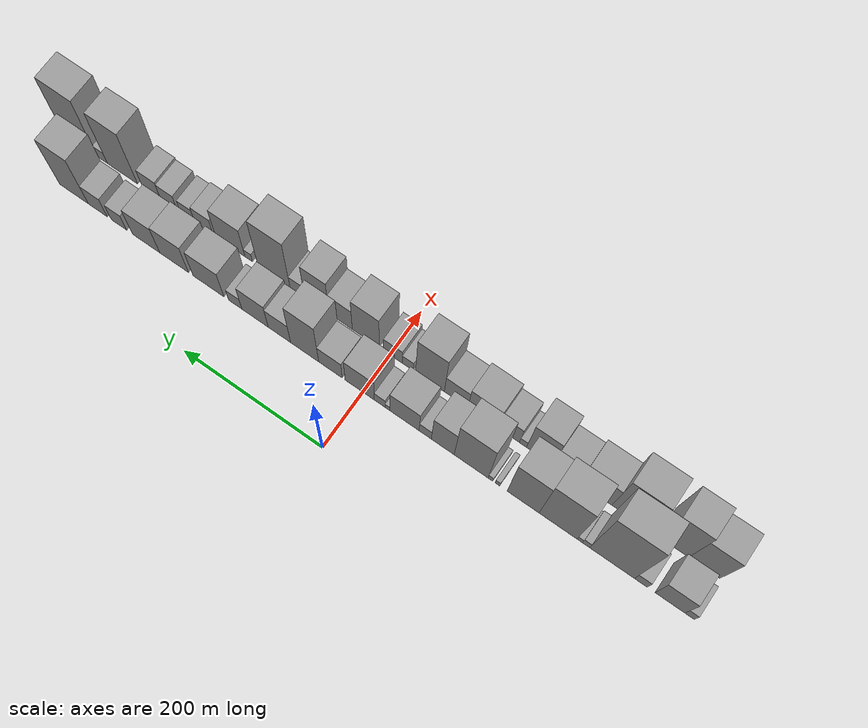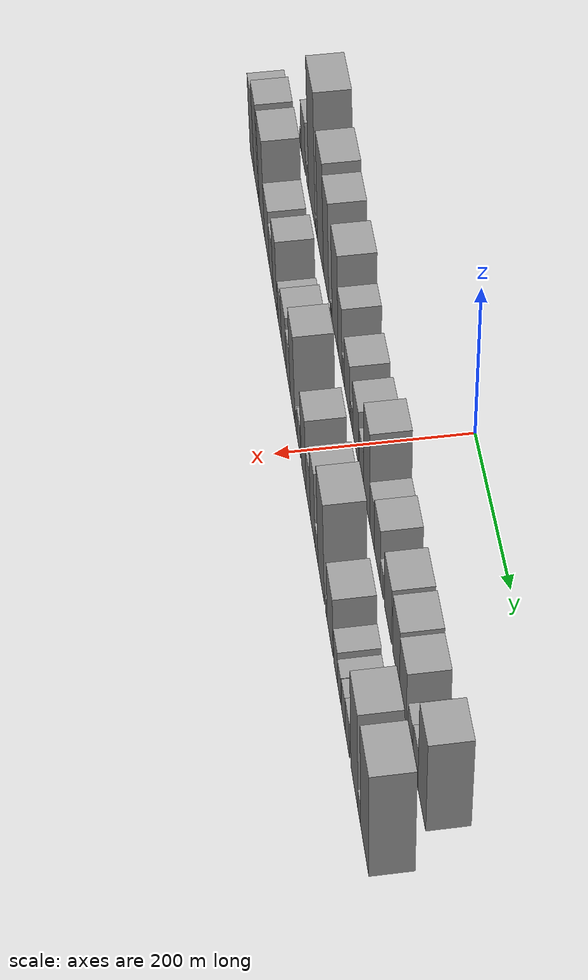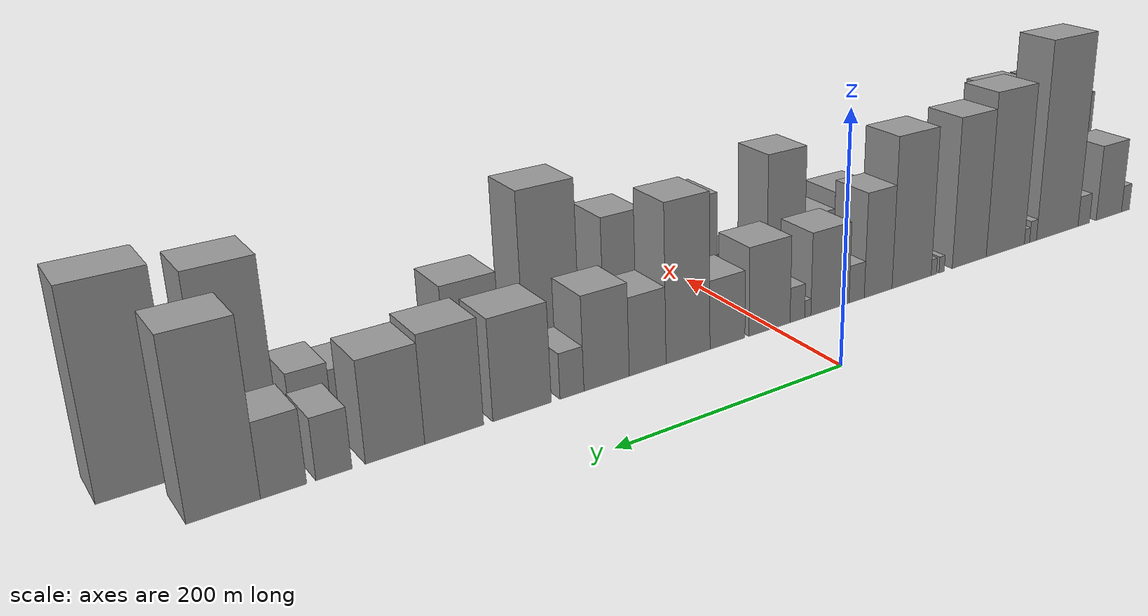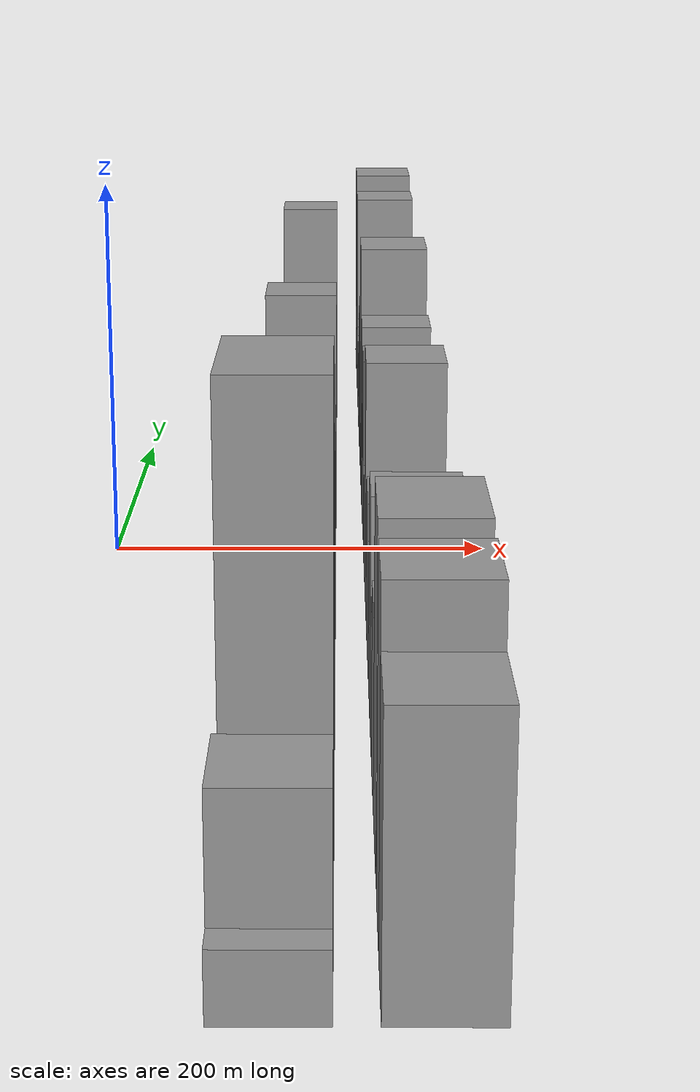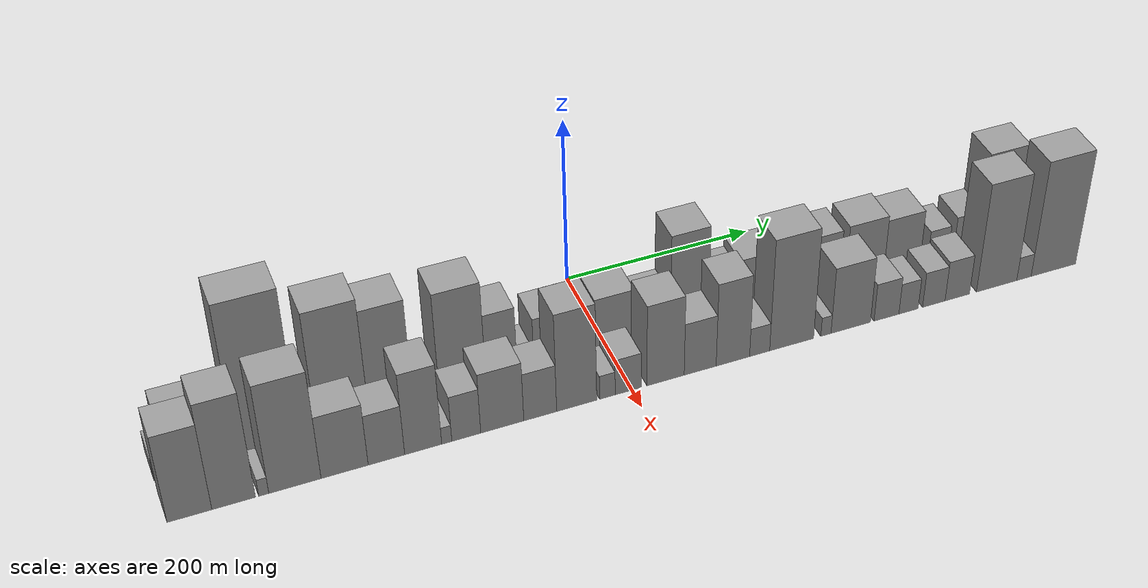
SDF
<sdf version="1.6">
 <world name="default">
  <scene>
   <sky><clouds><speed>12</speed></clouds></sky>
   <ambient>0.4 0.4 0.4 1</ambient>
   <background>0.7 0.7 0.7 1</background>
   <shadows>1</shadows>
  </scene>
  <gravity>0 0 -9.8066</gravity>
  <magnetic_field>6e-06 2.3e-05 -4.2e-05</magnetic_field>
  <physics default="0" name="default_physics" type="ode">
   <ode>
    <solver>
     <type>quick</type>
     <iters>10</iters>
     <sor>1.0</sor>
     <use_dynamic_moi_rescaling>0</use_dynamic_moi_rescaling>
    </solver>
    <constraints>
     <cfm>0</cfm>
     <erp>0.2</erp>
     <contact_max_correcting_vel>100</contact_max_correcting_vel>
     <contact_surface_layer>0.001</contact_surface_layer>
    </constraints>
   </ode>
   <max_step_size>0.004</max_step_size>
   <real_time_factor>1</real_time_factor>
   <real_time_update_rate>250</real_time_update_rate>
  </physics>
  <light name="sun" type="directional">
   <pose>0 0 10 0 0 0</pose>
   <diffuse>0.8 0.8 0.8 1</diffuse>
   <specular>0.2 0.2 0.2 1</specular>
   <attenuation>
    <range>1000</range>
    <constant>0.9</constant>
    <linear>0.01</linear>
    <quadratic>0.001</quadratic>
   </attenuation>
   <direction>-0.5 0.1 -0.9</direction>
  </light>
  <model name="building_1">
   <static>1</static>
   <pose>100.0000 -443.9033 0 0.000000 0.000000 0.000000</pose>
   <link name="link">
    <pose>0 0 13.50 0 0 0</pose>
    <collision name="collision"><geometry><box><size>40.0000 12.1934 27.0000</size></box></geometry></collision>
    <visual name="visual">
     <cast_shadows>0</cast_shadows>
     <geometry><box><size>40.0000 12.1934 27.0000</size></box></geometry>
     <material>
      <script>
       <uri>model://grey_wall/materials/scripts</uri>
       <uri>model://grey_wall/materials/textures</uri>
       <name>vrc/grey_wall</name>
      </script>
     </material>
    </visual>
   </link>
  </model>
  <model name="building_2">
   <static>1</static>
   <pose>100.0000 -418.4260 0 0.000000 0.000000 0.000000</pose>
   <link name="link">
    <pose>0 0 37.50 0 0 0</pose>
    <collision name="collision"><geometry><box><size>40.0000 38.7613 75.0000</size></box></geometry></collision>
    <visual name="visual">
     <cast_shadows>0</cast_shadows>
     <geometry><box><size>40.0000 38.7613 75.0000</size></box></geometry>
     <material>
      <script>
       <uri>model://grey_wall/materials/scripts</uri>
       <uri>model://grey_wall/materials/textures</uri>
       <name>vrc/grey_wall</name>
      </script>
     </material>
    </visual>
   </link>
  </model>
  <model name="building_3">
   <static>1</static>
   <pose>100.0000 -380.5688 0 0.000000 0.000000 0.000000</pose>
   <link name="link">
    <pose>0 0 15.00 0 0 0</pose>
    <collision name="collision"><geometry><box><size>40.0000 16.9530 30.0000</size></box></geometry></collision>
    <visual name="visual">
     <cast_shadows>0</cast_shadows>
     <geometry><box><size>40.0000 16.9530 30.0000</size></box></geometry>
     <material>
      <script>
       <uri>model://grey_wall/materials/scripts</uri>
       <uri>model://grey_wall/materials/textures</uri>
       <name>vrc/grey_wall</name>
      </script>
     </material>
    </visual>
   </link>
  </model>
  <model name="building_4">
   <static>1</static>
   <pose>100.0000 -342.3621 0 0.000000 0.000000 0.000000</pose>
   <link name="link">
    <pose>0 0 94.50 0 0 0</pose>
    <collision name="collision"><geometry><box><size>40.0000 59.4605 189.0000</size></box></geometry></collision>
    <visual name="visual">
     <cast_shadows>0</cast_shadows>
     <geometry><box><size>40.0000 59.4605 189.0000</size></box></geometry>
     <material>
      <script>
       <uri>model://grey_wall/materials/scripts</uri>
       <uri>model://grey_wall/materials/textures</uri>
       <name>vrc/grey_wall</name>
      </script>
     </material>
    </visual>
   </link>
  </model>
  <model name="building_5">
   <static>1</static>
   <pose>100.0000 -307.8741 0 0.000000 0.000000 0.000000</pose>
   <link name="link">
    <pose>0 0 10.50 0 0 0</pose>
    <collision name="collision"><geometry><box><size>40.0000 9.5156 21.0000</size></box></geometry></collision>
    <visual name="visual">
     <cast_shadows>0</cast_shadows>
     <geometry><box><size>40.0000 9.5156 21.0000</size></box></geometry>
     <material>
      <script>
       <uri>model://grey_wall/materials/scripts</uri>
       <uri>model://grey_wall/materials/textures</uri>
       <name>vrc/grey_wall</name>
      </script>
     </material>
    </visual>
   </link>
  </model>
  <model name="building_6">
   <static>1</static>
   <pose>100.0000 -299.5554 0 0.000000 0.000000 0.000000</pose>
   <link name="link">
    <pose>0 0 7.50 0 0 0</pose>
    <collision name="collision"><geometry><box><size>40.0000 7.1216 15.0000</size></box></geometry></collision>
    <visual name="visual">
     <cast_shadows>0</cast_shadows>
     <geometry><box><size>40.0000 7.1216 15.0000</size></box></geometry>
     <material>
      <script>
       <uri>model://grey_wall/materials/scripts</uri>
       <uri>model://grey_wall/materials/textures</uri>
       <name>vrc/grey_wall</name>
      </script>
     </material>
    </visual>
   </link>
  </model>
  <model name="building_7">
   <static>1</static>
   <pose>100.0000 -270.4288 0 0.000000 0.000000 0.000000</pose>
   <link name="link">
    <pose>0 0 76.50 0 0 0</pose>
    <collision name="collision"><geometry><box><size>40.0000 51.1316 153.0000</size></box></geometry></collision>
    <visual name="visual">
     <cast_shadows>0</cast_shadows>
     <geometry><box><size>40.0000 51.1316 153.0000</size></box></geometry>
     <material>
      <script>
       <uri>model://grey_wall/materials/scripts</uri>
       <uri>model://grey_wall/materials/textures</uri>
       <name>vrc/grey_wall</name>
      </script>
     </material>
    </visual>
   </link>
  </model>
  <model name="building_8">
   <static>1</static>
   <pose>100.0000 -223.1393 0 0.000000 0.000000 0.000000</pose>
   <link name="link">
    <pose>0 0 69.00 0 0 0</pose>
    <collision name="collision"><geometry><box><size>40.0000 43.4473 138.0000</size></box></geometry></collision>
    <visual name="visual">
     <cast_shadows>0</cast_shadows>
     <geometry><box><size>40.0000 43.4473 138.0000</size></box></geometry>
     <material>
      <script>
       <uri>model://grey_wall/materials/scripts</uri>
       <uri>model://grey_wall/materials/textures</uri>
       <name>vrc/grey_wall</name>
      </script>
     </material>
    </visual>
   </link>
  </model>
  <model name="building_9">
   <static>1</static>
   <pose>100.0000 -188.1694 0 0.000000 0.000000 0.000000</pose>
   <link name="link">
    <pose>0 0 7.50 0 0 0</pose>
    <collision name="collision"><geometry><box><size>40.0000 6.4925 15.0000</size></box></geometry></collision>
    <visual name="visual">
     <cast_shadows>0</cast_shadows>
     <geometry><box><size>40.0000 6.4925 15.0000</size></box></geometry>
     <material>
      <script>
       <uri>model://grey_wall/materials/scripts</uri>
       <uri>model://grey_wall/materials/textures</uri>
       <name>vrc/grey_wall</name>
      </script>
     </material>
    </visual>
   </link>
  </model>
  <model name="building_10">
   <static>1</static>
   <pose>100.0000 -178.6271 0 0.000000 0.000000 0.000000</pose>
   <link name="link">
    <pose>0 0 7.50 0 0 0</pose>
    <collision name="collision"><geometry><box><size>40.0000 6.5922 15.0000</size></box></geometry></collision>
    <visual name="visual">
     <cast_shadows>0</cast_shadows>
     <geometry><box><size>40.0000 6.5922 15.0000</size></box></geometry>
     <material>
      <script>
       <uri>model://grey_wall/materials/scripts</uri>
       <uri>model://grey_wall/materials/textures</uri>
       <name>vrc/grey_wall</name>
      </script>
     </material>
    </visual>
   </link>
  </model>
  <model name="building_11">
   <static>1</static>
   <pose>100.0000 -151.9508 0 0.000000 0.000000 0.000000</pose>
   <link name="link">
    <pose>0 0 67.50 0 0 0</pose>
    <collision name="collision"><geometry><box><size>40.0000 46.7603 135.0000</size></box></geometry></collision>
    <visual name="visual">
     <cast_shadows>0</cast_shadows>
     <geometry><box><size>40.0000 46.7603 135.0000</size></box></geometry>
     <material>
      <script>
       <uri>model://grey_wall/materials/scripts</uri>
       <uri>model://grey_wall/materials/textures</uri>
       <name>vrc/grey_wall</name>
      </script>
     </material>
    </visual>
   </link>
  </model>
  <model name="building_12">
   <static>1</static>
   <pose>100.0000 -112.6563 0 0.000000 0.000000 0.000000</pose>
   <link name="link">
    <pose>0 0 46.50 0 0 0</pose>
    <collision name="collision"><geometry><box><size>40.0000 31.8286 93.0000</size></box></geometry></collision>
    <visual name="visual">
     <cast_shadows>0</cast_shadows>
     <geometry><box><size>40.0000 31.8286 93.0000</size></box></geometry>
     <material>
      <script>
       <uri>model://grey_wall/materials/scripts</uri>
       <uri>model://grey_wall/materials/textures</uri>
       <name>vrc/grey_wall</name>
      </script>
     </material>
    </visual>
   </link>
  </model>
  <model name="building_13">
   <static>1</static>
   <pose>100.0000 -88.1731 0 0.000000 0.000000 0.000000</pose>
   <link name="link">
    <pose>0 0 16.50 0 0 0</pose>
    <collision name="collision"><geometry><box><size>40.0000 17.1380 33.0000</size></box></geometry></collision>
    <visual name="visual">
     <cast_shadows>0</cast_shadows>
     <geometry><box><size>40.0000 17.1380 33.0000</size></box></geometry>
     <material>
      <script>
       <uri>model://grey_wall/materials/scripts</uri>
       <uri>model://grey_wall/materials/textures</uri>
       <name>vrc/grey_wall</name>
      </script>
     </material>
    </visual>
   </link>
  </model>
  <model name="building_14">
   <static>1</static>
   <pose>100.0000 -58.9410 0 0.000000 0.000000 0.000000</pose>
   <link name="link">
    <pose>0 0 36.00 0 0 0</pose>
    <collision name="collision"><geometry><box><size>40.0000 41.3262 72.0000</size></box></geometry></collision>
    <visual name="visual">
     <cast_shadows>0</cast_shadows>
     <geometry><box><size>40.0000 41.3262 72.0000</size></box></geometry>
     <material>
      <script>
       <uri>model://grey_wall/materials/scripts</uri>
       <uri>model://grey_wall/materials/textures</uri>
       <name>vrc/grey_wall</name>
      </script>
     </material>
    </visual>
   </link>
  </model>
  <model name="building_15">
   <static>1</static>
   <pose>100.0000 -35.0279 0 0.000000 0.000000 0.000000</pose>
   <link name="link">
    <pose>0 0 7.50 0 0 0</pose>
    <collision name="collision"><geometry><box><size>40.0000 6.4999 15.0000</size></box></geometry></collision>
    <visual name="visual">
     <cast_shadows>0</cast_shadows>
     <geometry><box><size>40.0000 6.4999 15.0000</size></box></geometry>
     <material>
      <script>
       <uri>model://grey_wall/materials/scripts</uri>
       <uri>model://grey_wall/materials/textures</uri>
       <name>vrc/grey_wall</name>
      </script>
     </material>
    </visual>
   </link>
  </model>
  <model name="building_16">
   <static>1</static>
   <pose>100.0000 -24.1176 0 0.000000 0.000000 0.000000</pose>
   <link name="link">
    <pose>0 0 15.00 0 0 0</pose>
    <collision name="collision"><geometry><box><size>40.0000 15.3207 30.0000</size></box></geometry></collision>
    <visual name="visual">
     <cast_shadows>0</cast_shadows>
     <geometry><box><size>40.0000 15.3207 30.0000</size></box></geometry>
     <material>
      <script>
       <uri>model://grey_wall/materials/scripts</uri>
       <uri>model://grey_wall/materials/textures</uri>
       <name>vrc/grey_wall</name>
      </script>
     </material>
    </visual>
   </link>
  </model>
  <model name="building_17">
   <static>1</static>
   <pose>100.0000 4.3981 0 0.000000 0.000000 0.000000</pose>
   <link name="link">
    <pose>0 0 37.50 0 0 0</pose>
    <collision name="collision"><geometry><box><size>40.0000 41.7108 75.0000</size></box></geometry></collision>
    <visual name="visual">
     <cast_shadows>0</cast_shadows>
     <geometry><box><size>40.0000 41.7108 75.0000</size></box></geometry>
     <material>
      <script>
       <uri>model://grey_wall/materials/scripts</uri>
       <uri>model://grey_wall/materials/textures</uri>
       <name>vrc/grey_wall</name>
      </script>
     </material>
    </visual>
   </link>
  </model>
  <model name="building_18">
   <static>1</static>
   <pose>100.0000 46.1943 0 0.000000 0.000000 0.000000</pose>
   <link name="link">
    <pose>0 0 28.50 0 0 0</pose>
    <collision name="collision"><geometry><box><size>40.0000 33.8816 57.0000</size></box></geometry></collision>
    <visual name="visual">
     <cast_shadows>0</cast_shadows>
     <geometry><box><size>40.0000 33.8816 57.0000</size></box></geometry>
     <material>
      <script>
       <uri>model://grey_wall/materials/scripts</uri>
       <uri>model://grey_wall/materials/textures</uri>
       <name>vrc/grey_wall</name>
      </script>
     </material>
    </visual>
   </link>
  </model>
  <model name="building_19">
   <static>1</static>
   <pose>100.0000 83.5413 0 0.000000 0.000000 0.000000</pose>
   <link name="link">
    <pose>0 0 64.50 0 0 0</pose>
    <collision name="collision"><geometry><box><size>40.0000 40.8124 129.0000</size></box></geometry></collision>
    <visual name="visual">
     <cast_shadows>0</cast_shadows>
     <geometry><box><size>40.0000 40.8124 129.0000</size></box></geometry>
     <material>
      <script>
       <uri>model://grey_wall/materials/scripts</uri>
       <uri>model://grey_wall/materials/textures</uri>
       <name>vrc/grey_wall</name>
      </script>
     </material>
    </visual>
   </link>
  </model>
  <model name="building_20">
   <static>1</static>
   <pose>100.0000 120.3281 0 0.000000 0.000000 0.000000</pose>
   <link name="link">
    <pose>0 0 31.50 0 0 0</pose>
    <collision name="collision"><geometry><box><size>40.0000 32.7611 63.0000</size></box></geometry></collision>
    <visual name="visual">
     <cast_shadows>0</cast_shadows>
     <geometry><box><size>40.0000 32.7611 63.0000</size></box></geometry>
     <material>
      <script>
       <uri>model://grey_wall/materials/scripts</uri>
       <uri>model://grey_wall/materials/textures</uri>
       <name>vrc/grey_wall</name>
      </script>
     </material>
    </visual>
   </link>
  </model>
  <model name="building_21">
   <static>1</static>
   <pose>100.0000 156.0944 0 0.000000 0.000000 0.000000</pose>
   <link name="link">
    <pose>0 0 37.50 0 0 0</pose>
    <collision name="collision"><geometry><box><size>40.0000 38.7715 75.0000</size></box></geometry></collision>
    <visual name="visual">
     <cast_shadows>0</cast_shadows>
     <geometry><box><size>40.0000 38.7715 75.0000</size></box></geometry>
     <material>
      <script>
       <uri>model://grey_wall/materials/scripts</uri>
       <uri>model://grey_wall/materials/textures</uri>
       <name>vrc/grey_wall</name>
      </script>
     </material>
    </visual>
   </link>
  </model>
  <model name="building_22">
   <static>1</static>
   <pose>100.0000 185.3956 0 0.000000 0.000000 0.000000</pose>
   <link name="link">
    <pose>0 0 18.00 0 0 0</pose>
    <collision name="collision"><geometry><box><size>40.0000 19.8310 36.0000</size></box></geometry></collision>
    <visual name="visual">
     <cast_shadows>0</cast_shadows>
     <geometry><box><size>40.0000 19.8310 36.0000</size></box></geometry>
     <material>
      <script>
       <uri>model://grey_wall/materials/scripts</uri>
       <uri>model://grey_wall/materials/textures</uri>
       <name>vrc/grey_wall</name>
      </script>
     </material>
    </visual>
   </link>
  </model>
  <model name="building_23">
   <static>1</static>
   <pose>100.0000 225.3533 0 0.000000 0.000000 0.000000</pose>
   <link name="link">
    <pose>0 0 39.00 0 0 0</pose>
    <collision name="collision"><geometry><box><size>40.0000 46.0843 78.0000</size></box></geometry></collision>
    <visual name="visual">
     <cast_shadows>0</cast_shadows>
     <geometry><box><size>40.0000 46.0843 78.0000</size></box></geometry>
     <material>
      <script>
       <uri>model://grey_wall/materials/scripts</uri>
       <uri>model://grey_wall/materials/textures</uri>
       <name>vrc/grey_wall</name>
      </script>
     </material>
    </visual>
   </link>
  </model>
  <model name="building_24">
   <static>1</static>
   <pose>100.0000 277.1228 0 0.000000 0.000000 0.000000</pose>
   <link name="link">
    <pose>0 0 40.50 0 0 0</pose>
    <collision name="collision"><geometry><box><size>40.0000 43.4547 81.0000</size></box></geometry></collision>
    <visual name="visual">
     <cast_shadows>0</cast_shadows>
     <geometry><box><size>40.0000 43.4547 81.0000</size></box></geometry>
     <material>
      <script>
       <uri>model://grey_wall/materials/scripts</uri>
       <uri>model://grey_wall/materials/textures</uri>
       <name>vrc/grey_wall</name>
      </script>
     </material>
    </visual>
   </link>
  </model>
  <model name="building_25">
   <static>1</static>
   <pose>100.0000 319.6025 0 0.000000 0.000000 0.000000</pose>
   <link name="link">
    <pose>0 0 37.50 0 0 0</pose>
    <collision name="collision"><geometry><box><size>40.0000 41.5046 75.0000</size></box></geometry></collision>
    <visual name="visual">
     <cast_shadows>0</cast_shadows>
     <geometry><box><size>40.0000 41.5046 75.0000</size></box></geometry>
     <material>
      <script>
       <uri>model://grey_wall/materials/scripts</uri>
       <uri>model://grey_wall/materials/textures</uri>
       <name>vrc/grey_wall</name>
      </script>
     </material>
    </visual>
   </link>
  </model>
  <model name="building_26">
   <static>1</static>
   <pose>100.0000 361.3115 0 0.000000 0.000000 0.000000</pose>
   <link name="link">
    <pose>0 0 22.50 0 0 0</pose>
    <collision name="collision"><geometry><box><size>40.0000 23.9134 45.0000</size></box></geometry></collision>
    <visual name="visual">
     <cast_shadows>0</cast_shadows>
     <geometry><box><size>40.0000 23.9134 45.0000</size></box></geometry>
     <material>
      <script>
       <uri>model://grey_wall/materials/scripts</uri>
       <uri>model://grey_wall/materials/textures</uri>
       <name>vrc/grey_wall</name>
      </script>
     </material>
    </visual>
   </link>
  </model>
  <model name="building_27">
   <static>1</static>
   <pose>100.0000 393.8903 0 0.000000 0.000000 0.000000</pose>
   <link name="link">
    <pose>0 0 27.00 0 0 0</pose>
    <collision name="collision"><geometry><box><size>40.0000 29.2443 54.0000</size></box></geometry></collision>
    <visual name="visual">
     <cast_shadows>0</cast_shadows>
     <geometry><box><size>40.0000 29.2443 54.0000</size></box></geometry>
     <material>
      <script>
       <uri>model://grey_wall/materials/scripts</uri>
       <uri>model://grey_wall/materials/textures</uri>
       <name>vrc/grey_wall</name>
      </script>
     </material>
    </visual>
   </link>
  </model>
  <model name="building_28">
   <static>1</static>
   <pose>100.0000 431.0166 0 0.000000 0.000000 0.000000</pose>
   <link name="link">
    <pose>0 0 63.00 0 0 0</pose>
    <collision name="collision"><geometry><box><size>40.0000 45.0083 126.0000</size></box></geometry></collision>
    <visual name="visual">
     <cast_shadows>0</cast_shadows>
     <geometry><box><size>40.0000 45.0083 126.0000</size></box></geometry>
     <material>
      <script>
       <uri>model://grey_wall/materials/scripts</uri>
       <uri>model://grey_wall/materials/textures</uri>
       <name>vrc/grey_wall</name>
      </script>
     </material>
    </visual>
   </link>
  </model>
  <model name="building_29">
   <static>1</static>
   <pose>155.0000 -429.5524 0 0.000000 0.000000 0.000000</pose>
   <link name="link">
    <pose>0 0 54.00 0 0 0</pose>
    <collision name="collision"><geometry><box><size>40.0000 40.8953 108.0000</size></box></geometry></collision>
    <visual name="visual">
     <cast_shadows>0</cast_shadows>
     <geometry><box><size>40.0000 40.8953 108.0000</size></box></geometry>
     <material>
      <script>
       <uri>model://grey_wall/materials/scripts</uri>
       <uri>model://grey_wall/materials/textures</uri>
       <name>vrc/grey_wall</name>
      </script>
     </material>
    </visual>
   </link>
  </model>
  <model name="building_30">
   <static>1</static>
   <pose>155.0000 -389.0187 0 0.000000 0.000000 0.000000</pose>
   <link name="link">
    <pose>0 0 66.00 0 0 0</pose>
    <collision name="collision"><geometry><box><size>40.0000 40.1720 132.0000</size></box></geometry></collision>
    <visual name="visual">
     <cast_shadows>0</cast_shadows>
     <geometry><box><size>40.0000 40.1720 132.0000</size></box></geometry>
     <material>
      <script>
       <uri>model://grey_wall/materials/scripts</uri>
       <uri>model://grey_wall/materials/textures</uri>
       <name>vrc/grey_wall</name>
      </script>
     </material>
    </visual>
   </link>
  </model>
  <model name="building_31">
   <static>1</static>
   <pose>155.0000 -361.2592 0 0.000000 0.000000 0.000000</pose>
   <link name="link">
    <pose>0 0 10.50 0 0 0</pose>
    <collision name="collision"><geometry><box><size>40.0000 9.3469 21.0000</size></box></geometry></collision>
    <visual name="visual">
     <cast_shadows>0</cast_shadows>
     <geometry><box><size>40.0000 9.3469 21.0000</size></box></geometry>
     <material>
      <script>
       <uri>model://grey_wall/materials/scripts</uri>
       <uri>model://grey_wall/materials/textures</uri>
       <name>vrc/grey_wall</name>
      </script>
     </material>
    </visual>
   </link>
  </model>
  <model name="building_32">
   <static>1</static>
   <pose>155.0000 -332.0616 0 0.000000 0.000000 0.000000</pose>
   <link name="link">
    <pose>0 0 67.50 0 0 0</pose>
    <collision name="collision"><geometry><box><size>40.0000 49.0482 135.0000</size></box></geometry></collision>
    <visual name="visual">
     <cast_shadows>0</cast_shadows>
     <geometry><box><size>40.0000 49.0482 135.0000</size></box></geometry>
     <material>
      <script>
       <uri>model://grey_wall/materials/scripts</uri>
       <uri>model://grey_wall/materials/textures</uri>
       <name>vrc/grey_wall</name>
      </script>
     </material>
    </visual>
   </link>
  </model>
  <model name="building_33">
   <static>1</static>
   <pose>155.0000 -285.1329 0 0.000000 0.000000 0.000000</pose>
   <link name="link">
    <pose>0 0 39.00 0 0 0</pose>
    <collision name="collision"><geometry><box><size>40.0000 44.8092 78.0000</size></box></geometry></collision>
    <visual name="visual">
     <cast_shadows>0</cast_shadows>
     <geometry><box><size>40.0000 44.8092 78.0000</size></box></geometry>
     <material>
      <script>
       <uri>model://grey_wall/materials/scripts</uri>
       <uri>model://grey_wall/materials/textures</uri>
       <name>vrc/grey_wall</name>
      </script>
     </material>
    </visual>
   </link>
  </model>
  <model name="building_34">
   <static>1</static>
   <pose>155.0000 -245.1449 0 0.000000 0.000000 0.000000</pose>
   <link name="link">
    <pose>0 0 31.50 0 0 0</pose>
    <collision name="collision"><geometry><box><size>40.0000 35.1667 63.0000</size></box></geometry></collision>
    <visual name="visual">
     <cast_shadows>0</cast_shadows>
     <geometry><box><size>40.0000 35.1667 63.0000</size></box></geometry>
     <material>
      <script>
       <uri>model://grey_wall/materials/scripts</uri>
       <uri>model://grey_wall/materials/textures</uri>
       <name>vrc/grey_wall</name>
      </script>
     </material>
    </visual>
   </link>
  </model>
  <model name="building_35">
   <static>1</static>
   <pose>155.0000 -209.5585 0 0.000000 0.000000 0.000000</pose>
   <link name="link">
    <pose>0 0 51.00 0 0 0</pose>
    <collision name="collision"><geometry><box><size>40.0000 36.0061 102.0000</size></box></geometry></collision>
    <visual name="visual">
     <cast_shadows>0</cast_shadows>
     <geometry><box><size>40.0000 36.0061 102.0000</size></box></geometry>
     <material>
      <script>
       <uri>model://grey_wall/materials/scripts</uri>
       <uri>model://grey_wall/materials/textures</uri>
       <name>vrc/grey_wall</name>
      </script>
     </material>
    </visual>
   </link>
  </model>
  <model name="building_36">
   <static>1</static>
   <pose>155.0000 -186.6163 0 0.000000 0.000000 0.000000</pose>
   <link name="link">
    <pose>0 0 10.50 0 0 0</pose>
    <collision name="collision"><geometry><box><size>40.0000 9.8783 21.0000</size></box></geometry></collision>
    <visual name="visual">
     <cast_shadows>0</cast_shadows>
     <geometry><box><size>40.0000 9.8783 21.0000</size></box></geometry>
     <material>
      <script>
       <uri>model://grey_wall/materials/scripts</uri>
       <uri>model://grey_wall/materials/textures</uri>
       <name>vrc/grey_wall</name>
      </script>
     </material>
    </visual>
   </link>
  </model>
  <model name="building_37">
   <static>1</static>
   <pose>155.0000 -167.3990 0 0.000000 0.000000 0.000000</pose>
   <link name="link">
    <pose>0 0 28.50 0 0 0</pose>
    <collision name="collision"><geometry><box><size>40.0000 28.5563 57.0000</size></box></geometry></collision>
    <visual name="visual">
     <cast_shadows>0</cast_shadows>
     <geometry><box><size>40.0000 28.5563 57.0000</size></box></geometry>
     <material>
      <script>
       <uri>model://grey_wall/materials/scripts</uri>
       <uri>model://grey_wall/materials/textures</uri>
       <name>vrc/grey_wall</name>
      </script>
     </material>
    </visual>
   </link>
  </model>
  <model name="building_38">
   <static>1</static>
   <pose>155.0000 -131.6866 0 0.000000 0.000000 0.000000</pose>
   <link name="link">
    <pose>0 0 37.50 0 0 0</pose>
    <collision name="collision"><geometry><box><size>40.0000 42.8687 75.0000</size></box></geometry></collision>
    <visual name="visual">
     <cast_shadows>0</cast_shadows>
     <geometry><box><size>40.0000 42.8687 75.0000</size></box></geometry>
     <material>
      <script>
       <uri>model://grey_wall/materials/scripts</uri>
       <uri>model://grey_wall/materials/textures</uri>
       <name>vrc/grey_wall</name>
      </script>
     </material>
    </visual>
   </link>
  </model>
  <model name="building_39">
   <static>1</static>
   <pose>155.0000 -93.7112 0 0.000000 0.000000 0.000000</pose>
   <link name="link">
    <pose>0 0 30.00 0 0 0</pose>
    <collision name="collision"><geometry><box><size>40.0000 33.0820 60.0000</size></box></geometry></collision>
    <visual name="visual">
     <cast_shadows>0</cast_shadows>
     <geometry><box><size>40.0000 33.0820 60.0000</size></box></geometry>
     <material>
      <script>
       <uri>model://grey_wall/materials/scripts</uri>
       <uri>model://grey_wall/materials/textures</uri>
       <name>vrc/grey_wall</name>
      </script>
     </material>
    </visual>
   </link>
  </model>
  <model name="building_40">
   <static>1</static>
   <pose>155.0000 -56.7668 0 0.000000 0.000000 0.000000</pose>
   <link name="link">
    <pose>0 0 61.50 0 0 0</pose>
    <collision name="collision"><geometry><box><size>40.0000 40.8070 123.0000</size></box></geometry></collision>
    <visual name="visual">
     <cast_shadows>0</cast_shadows>
     <geometry><box><size>40.0000 40.8070 123.0000</size></box></geometry>
     <material>
      <script>
       <uri>model://grey_wall/materials/scripts</uri>
       <uri>model://grey_wall/materials/textures</uri>
       <name>vrc/grey_wall</name>
      </script>
     </material>
    </visual>
   </link>
  </model>
  <model name="building_41">
   <static>1</static>
   <pose>155.0000 -25.3772 0 0.000000 0.000000 0.000000</pose>
   <link name="link">
    <pose>0 0 15.00 0 0 0</pose>
    <collision name="collision"><geometry><box><size>40.0000 15.9722 30.0000</size></box></geometry></collision>
    <visual name="visual">
     <cast_shadows>0</cast_shadows>
     <geometry><box><size>40.0000 15.9722 30.0000</size></box></geometry>
     <material>
      <script>
       <uri>model://grey_wall/materials/scripts</uri>
       <uri>model://grey_wall/materials/textures</uri>
       <name>vrc/grey_wall</name>
      </script>
     </material>
    </visual>
   </link>
  </model>
  <model name="building_42">
   <static>1</static>
   <pose>155.0000 -3.9710 0 0.000000 0.000000 0.000000</pose>
   <link name="link">
    <pose>0 0 22.50 0 0 0</pose>
    <collision name="collision"><geometry><box><size>40.0000 26.8402 45.0000</size></box></geometry></collision>
    <visual name="visual">
     <cast_shadows>0</cast_shadows>
     <geometry><box><size>40.0000 26.8402 45.0000</size></box></geometry>
     <material>
      <script>
       <uri>model://grey_wall/materials/scripts</uri>
       <uri>model://grey_wall/materials/textures</uri>
       <name>vrc/grey_wall</name>
      </script>
     </material>
    </visual>
   </link>
  </model>
  <model name="building_43">
   <static>1</static>
   <pose>155.0000 34.9249 0 0.000000 0.000000 0.000000</pose>
   <link name="link">
    <pose>0 0 51.00 0 0 0</pose>
    <collision name="collision"><geometry><box><size>40.0000 38.9514 102.0000</size></box></geometry></collision>
    <visual name="visual">
     <cast_shadows>0</cast_shadows>
     <geometry><box><size>40.0000 38.9514 102.0000</size></box></geometry>
     <material>
      <script>
       <uri>model://grey_wall/materials/scripts</uri>
       <uri>model://grey_wall/materials/textures</uri>
       <name>vrc/grey_wall</name>
      </script>
     </material>
    </visual>
   </link>
  </model>
  <model name="building_44">
   <static>1</static>
   <pose>155.0000 71.2955 0 0.000000 0.000000 0.000000</pose>
   <link name="link">
    <pose>0 0 33.00 0 0 0</pose>
    <collision name="collision"><geometry><box><size>40.0000 33.7898 66.0000</size></box></geometry></collision>
    <visual name="visual">
     <cast_shadows>0</cast_shadows>
     <geometry><box><size>40.0000 33.7898 66.0000</size></box></geometry>
     <material>
      <script>
       <uri>model://grey_wall/materials/scripts</uri>
       <uri>model://grey_wall/materials/textures</uri>
       <name>vrc/grey_wall</name>
      </script>
     </material>
    </visual>
   </link>
  </model>
  <model name="building_45">
   <static>1</static>
   <pose>155.0000 106.0630 0 0.000000 0.000000 0.000000</pose>
   <link name="link">
    <pose>0 0 52.50 0 0 0</pose>
    <collision name="collision"><geometry><box><size>40.0000 35.7453 105.0000</size></box></geometry></collision>
    <visual name="visual">
     <cast_shadows>0</cast_shadows>
     <geometry><box><size>40.0000 35.7453 105.0000</size></box></geometry>
     <material>
      <script>
       <uri>model://grey_wall/materials/scripts</uri>
       <uri>model://grey_wall/materials/textures</uri>
       <name>vrc/grey_wall</name>
      </script>
     </material>
    </visual>
   </link>
  </model>
  <model name="building_46">
   <static>1</static>
   <pose>155.0000 134.7279 0 0.000000 0.000000 0.000000</pose>
   <link name="link">
    <pose>0 0 18.00 0 0 0</pose>
    <collision name="collision"><geometry><box><size>40.0000 21.5845 36.0000</size></box></geometry></collision>
    <visual name="visual">
     <cast_shadows>0</cast_shadows>
     <geometry><box><size>40.0000 21.5845 36.0000</size></box></geometry>
     <material>
      <script>
       <uri>model://grey_wall/materials/scripts</uri>
       <uri>model://grey_wall/materials/textures</uri>
       <name>vrc/grey_wall</name>
      </script>
     </material>
    </visual>
   </link>
  </model>
  <model name="building_47">
   <static>1</static>
   <pose>155.0000 169.3784 0 0.000000 0.000000 0.000000</pose>
   <link name="link">
    <pose>0 0 70.50 0 0 0</pose>
    <collision name="collision"><geometry><box><size>40.0000 47.7165 141.0000</size></box></geometry></collision>
    <visual name="visual">
     <cast_shadows>0</cast_shadows>
     <geometry><box><size>40.0000 47.7165 141.0000</size></box></geometry>
     <material>
      <script>
       <uri>model://grey_wall/materials/scripts</uri>
       <uri>model://grey_wall/materials/textures</uri>
       <name>vrc/grey_wall</name>
      </script>
     </material>
    </visual>
   </link>
  </model>
  <model name="building_48">
   <static>1</static>
   <pose>155.0000 206.8339 0 0.000000 0.000000 0.000000</pose>
   <link name="link">
    <pose>0 0 12.00 0 0 0</pose>
    <collision name="collision"><geometry><box><size>40.0000 11.1947 24.0000</size></box></geometry></collision>
    <visual name="visual">
     <cast_shadows>0</cast_shadows>
     <geometry><box><size>40.0000 11.1947 24.0000</size></box></geometry>
     <material>
      <script>
       <uri>model://grey_wall/materials/scripts</uri>
       <uri>model://grey_wall/materials/textures</uri>
       <name>vrc/grey_wall</name>
      </script>
     </material>
    </visual>
   </link>
  </model>
  <model name="building_49">
   <static>1</static>
   <pose>155.0000 234.2595 0 0.000000 0.000000 0.000000</pose>
   <link name="link">
    <pose>0 0 42.00 0 0 0</pose>
    <collision name="collision"><geometry><box><size>40.0000 43.6564 84.0000</size></box></geometry></collision>
    <visual name="visual">
     <cast_shadows>0</cast_shadows>
     <geometry><box><size>40.0000 43.6564 84.0000</size></box></geometry>
     <material>
      <script>
       <uri>model://grey_wall/materials/scripts</uri>
       <uri>model://grey_wall/materials/textures</uri>
       <name>vrc/grey_wall</name>
      </script>
     </material>
    </visual>
   </link>
  </model>
  <model name="building_50">
   <static>1</static>
   <pose>155.0000 274.0256 0 0.000000 0.000000 0.000000</pose>
   <link name="link">
    <pose>0 0 24.00 0 0 0</pose>
    <collision name="collision"><geometry><box><size>40.0000 27.8760 48.0000</size></box></geometry></collision>
    <visual name="visual">
     <cast_shadows>0</cast_shadows>
     <geometry><box><size>40.0000 27.8760 48.0000</size></box></geometry>
     <material>
      <script>
       <uri>model://grey_wall/materials/scripts</uri>
       <uri>model://grey_wall/materials/textures</uri>
       <name>vrc/grey_wall</name>
      </script>
     </material>
    </visual>
   </link>
  </model>
  <model name="building_51">
   <static>1</static>
   <pose>155.0000 298.8091 0 0.000000 0.000000 0.000000</pose>
   <link name="link">
    <pose>0 0 19.50 0 0 0</pose>
    <collision name="collision"><geometry><box><size>40.0000 21.6910 39.0000</size></box></geometry></collision>
    <visual name="visual">
     <cast_shadows>0</cast_shadows>
     <geometry><box><size>40.0000 21.6910 39.0000</size></box></geometry>
     <material>
      <script>
       <uri>model://grey_wall/materials/scripts</uri>
       <uri>model://grey_wall/materials/textures</uri>
       <name>vrc/grey_wall</name>
      </script>
     </material>
    </visual>
   </link>
  </model>
  <model name="building_52">
   <static>1</static>
   <pose>155.0000 327.4130 0 0.000000 0.000000 0.000000</pose>
   <link name="link">
    <pose>0 0 22.50 0 0 0</pose>
    <collision name="collision"><geometry><box><size>40.0000 25.5170 45.0000</size></box></geometry></collision>
    <visual name="visual">
     <cast_shadows>0</cast_shadows>
     <geometry><box><size>40.0000 25.5170 45.0000</size></box></geometry>
     <material>
      <script>
       <uri>model://grey_wall/materials/scripts</uri>
       <uri>model://grey_wall/materials/textures</uri>
       <name>vrc/grey_wall</name>
      </script>
     </material>
    </visual>
   </link>
  </model>
  <model name="building_53">
   <static>1</static>
   <pose>155.0000 354.1915 0 0.000000 0.000000 0.000000</pose>
   <link name="link">
    <pose>0 0 25.50 0 0 0</pose>
    <collision name="collision"><geometry><box><size>40.0000 28.0399 51.0000</size></box></geometry></collision>
    <visual name="visual">
     <cast_shadows>0</cast_shadows>
     <geometry><box><size>40.0000 28.0399 51.0000</size></box></geometry>
     <material>
      <script>
       <uri>model://grey_wall/materials/scripts</uri>
       <uri>model://grey_wall/materials/textures</uri>
       <name>vrc/grey_wall</name>
      </script>
     </material>
    </visual>
   </link>
  </model>
  <model name="building_54">
   <static>1</static>
   <pose>155.0000 399.6026 0 0.000000 0.000000 0.000000</pose>
   <link name="link">
    <pose>0 0 69.00 0 0 0</pose>
    <collision name="collision"><geometry><box><size>40.0000 46.7822 138.0000</size></box></geometry></collision>
    <visual name="visual">
     <cast_shadows>0</cast_shadows>
     <geometry><box><size>40.0000 46.7822 138.0000</size></box></geometry>
     <material>
      <script>
       <uri>model://grey_wall/materials/scripts</uri>
       <uri>model://grey_wall/materials/textures</uri>
       <name>vrc/grey_wall</name>
      </script>
     </material>
    </visual>
   </link>
  </model>
  <model name="building_55">
   <static>1</static>
   <pose>155.0000 431.3769 0 0.000000 0.000000 0.000000</pose>
   <link name="link">
    <pose>0 0 15.00 0 0 0</pose>
    <collision name="collision"><geometry><box><size>40.0000 16.7662 30.0000</size></box></geometry></collision>
    <visual name="visual">
     <cast_shadows>0</cast_shadows>
     <geometry><box><size>40.0000 16.7662 30.0000</size></box></geometry>
     <material>
      <script>
       <uri>model://grey_wall/materials/scripts</uri>
       <uri>model://grey_wall/materials/textures</uri>
       <name>vrc/grey_wall</name>
      </script>
     </material>
    </visual>
   </link>
  </model>
  <model name="building_56">
   <static>1</static>
   <pose>155.0000 465.9358 0 0.000000 0.000000 0.000000</pose>
   <link name="link">
    <pose>0 0 73.50 0 0 0</pose>
    <collision name="collision"><geometry><box><size>40.0000 52.3516 147.0000</size></box></geometry></collision>
    <visual name="visual">
     <cast_shadows>0</cast_shadows>
     <geometry><box><size>40.0000 52.3516 147.0000</size></box></geometry>
     <material>
      <script>
       <uri>model://grey_wall/materials/scripts</uri>
       <uri>model://grey_wall/materials/textures</uri>
       <name>vrc/grey_wall</name>
      </script>
     </material>
    </visual>
   </link>
  </model>
 </world>
</sdf>
